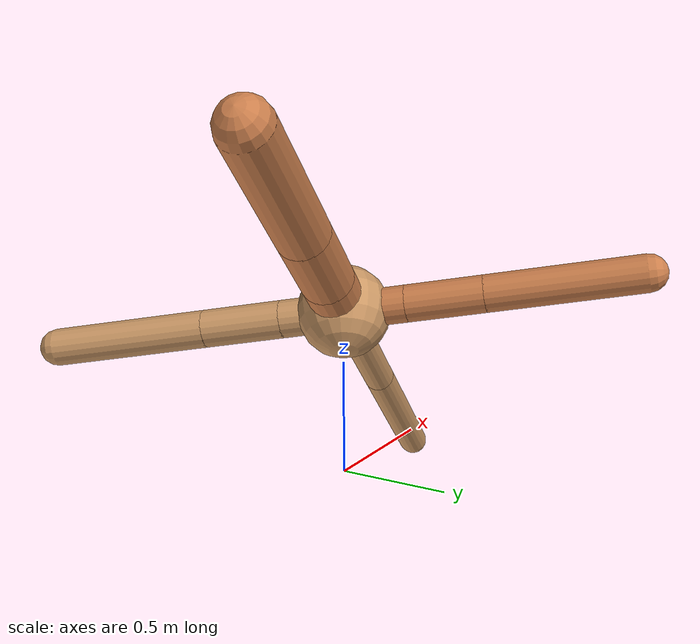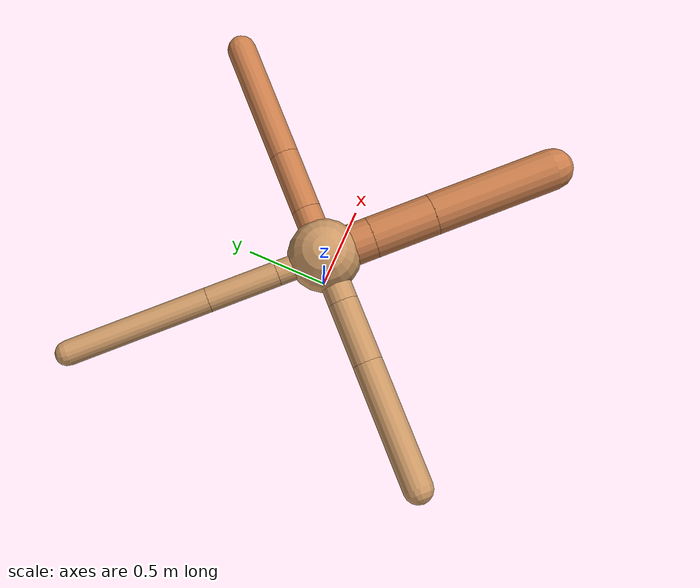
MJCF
<?xml version="1.0" ?>
<mujoco model="ant">

	<compiler angle="degree" coordinate="local" inertiafromgeom="true"/>

	<option integrator="RK4" timestep="0.01"/>

	<custom>

		<numeric data="0.0 0.0 0.55 1.0 0.0 0.0 0.0 0.0 1.0 0.0 -1.0 0.0 -1.0 0.0 1.0" name="init_qpos"/>

	</custom>

	<default>

		<joint armature="1" damping="1" limited="true"/>

		<geom conaffinity="0" condim="3" density="5.0" friction="1.5 0.1 0.1" margin="0.01" rgba="0.8 0.6 0.4 1"/>

	</default>

	<worldbody>

		<body name="torso" pos="0 0 0.75">

			<geom name="torso_geom" pos="0 0 0" size="0.20834707923957596" type="sphere"/>

			<!--joint armature="0" damping="0" limited="false" margin="0.01" name="root" pos="0 0 0" type="free"/-->

			<body name="front_left_leg" pos="0 0 0">

				<geom fromto="0 0 0 0.2 0.2 0" name="aux_1_geom" size="0.08284346661986407" type="capsule" rgba=".8 .5 .3 1"/>

				<body name="aux_1" pos="0.2 0.2 0">

					<joint axis="0 0 1" name="hip_1" pos="0.0 0.0 0.0" range="-40 40" type="hinge"/>

					<geom fromto="0 0 0 0.24427203691685523 0.24427203691685523 0" name="left_leg_geom" size="0.08284346661986407" type="capsule" rgba=".8 .5 .3 1"/>

					<body pos="0.24427203691685523 0.24427203691685523 0" name="front_left_foot">

						<joint axis="-1 1 0" name="ankle_1" pos="0.0 0.0 0.0" range="30 100" type="hinge"/>

						<geom fromto="0 0 0 0.48854407383371046 0.48854407383371046 0" name="left_ankle_geom" size="0.08284346661986407" type="capsule" rgba=".8 .5 .3 1"/>

					</body>

				</body>

			</body>

			<body name="front_right_leg" pos="0 0 0">

				<geom fromto="0 0 0 -0.2 0.2 0" name="aux_2_geom" size="0.07084599073200033" type="capsule"/>

				<body name="aux_2" pos="-0.2 0.2 0">

					<joint axis="0 0 1" name="hip_2" pos="0.0 0.0 0.0" range="-40 40" type="hinge"/>

					<geom fromto="0 0 0 -0.2887928504612431 0.2887928504612431 0" name="right_leg_geom" size="0.07084599073200033" type="capsule"/>

					<body pos="-0.2887928504612431 0.2887928504612431 0" name="front_right_foot">

						<joint axis="1 1 0" name="ankle_2" pos="0.0 0.0 0.0" range="-100 -30" type="hinge"/>

						<geom fromto="0 0 0 -0.5775857009224862 0.5775857009224862 0" name="right_ankle_geom" size="0.07084599073200033" type="capsule"/>

					</body>

				</body>

			</body>

			<body name="left_back_leg" pos="0 0 0">

				<geom fromto="0 0 0 -0.2 -0.2 0" name="aux_3_geom" size="0.08531486239813622" type="capsule"/>

				<body name="aux_3" pos="-0.2 -0.2 0">

					<joint axis="0 0 1" name="hip_3" pos="0.0 0.0 0.0" range="-40 40" type="hinge"/>

					<geom fromto="0 0 0 -0.2570830882520478 -0.2570830882520478 0" name="back_leg_geom" size="0.08531486239813622" type="capsule"/>

					<body pos="-0.2570830882520478 -0.2570830882520478 0" name="left_back_foot">

						<joint axis="-1 1 0" name="ankle_3" pos="0.0 0.0 0.0" range="-100 -30" type="hinge"/>

						<geom fromto="0 0 0 -0.5141661765040956 -0.5141661765040956 0" name="third_ankle_geom" size="0.08531486239813622" type="capsule"/>

					</body>

				</body>

			</body>

			<body name="right_back_leg" pos="0 0 0">

				<geom fromto="0 0 0 0.2 -0.2 0" name="aux_4_geom" size="0.11919094934337592" type="capsule" rgba=".8 .5 .3 1"/>

				<body name="aux_4" pos="0.2 -0.2 0">

					<joint axis="0 0 1" name="hip_4" pos="0.0 0.0 0.0" range="-40 40" type="hinge"/>

					<geom fromto="0 0 0 0.26053435887832377 -0.26053435887832377 0" name="rightback_leg_geom" size="0.11919094934337592" type="capsule" rgba=".8 .5 .3 1"/>

					<body pos="0.26053435887832377 -0.26053435887832377 0" name="right_back_foot">

						<joint axis="1 1 0" name="ankle_4" pos="0.0 0.0 0.0" range="30 100" type="hinge"/>

						<geom fromto="0 0 0 0.5210687177566475 -0.5210687177566475 0" name="fourth_ankle_geom" size="0.11919094934337592" type="capsule" rgba=".8 .5 .3 1"/>

					</body>

				</body>

			</body>

		</body>

	</worldbody>

	<actuator>

		<motor ctrllimited="true" ctrlrange="-1.0 1.0" joint="hip_4" gear="150"/>

		<motor ctrllimited="true" ctrlrange="-1.0 1.0" joint="ankle_4" gear="150"/>

		<motor ctrllimited="true" ctrlrange="-1.0 1.0" joint="hip_1" gear="150"/>

		<motor ctrllimited="true" ctrlrange="-1.0 1.0" joint="ankle_1" gear="150"/>

		<motor ctrllimited="true" ctrlrange="-1.0 1.0" joint="hip_2" gear="150"/>

		<motor ctrllimited="true" ctrlrange="-1.0 1.0" joint="ankle_2" gear="150"/>

		<motor ctrllimited="true" ctrlrange="-1.0 1.0" joint="hip_3" gear="150"/>

		<motor ctrllimited="true" ctrlrange="-1.0 1.0" joint="ankle_3" gear="150"/>

	</actuator>

</mujoco>
